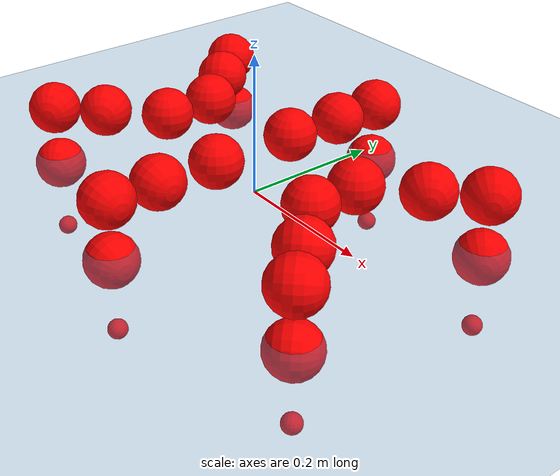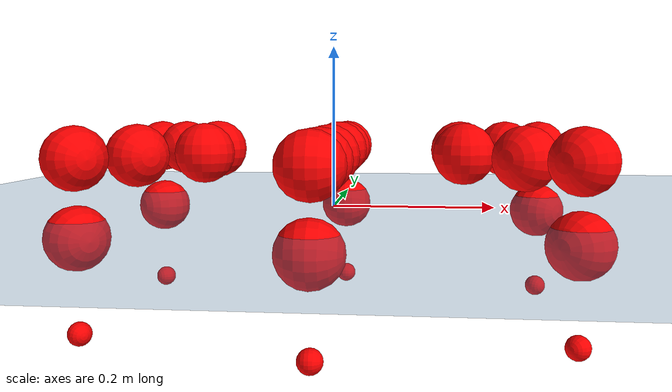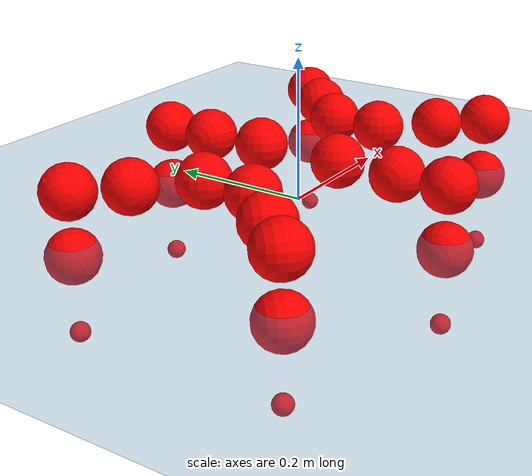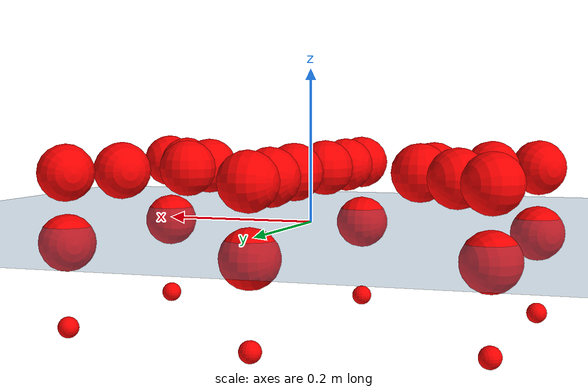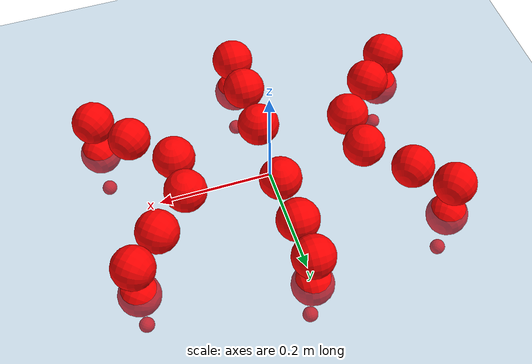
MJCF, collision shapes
<mujoco model="Golem">
  <compiler angle="radian" assetdir="assets" balanceinertia="true" inertiafromgeom="false"/>

  <option timestep="0.005" density="1.2" viscosity="2e-05"/>

  <size nkey="1"/>

  <visual>
    <quality shadowsize="8192"/>
    <map shadowclip="0.5"/>
  </visual>

  <default>
    <default class="/">
      <joint armature="0.01" damping="0.01" frictionloss="0.01"/>
      <geom contype="0" conaffinity="0" group="1" solref="-1000 -80"/>
      <site size="0.01 0.005 0.005" group="5"/>
      <general forcelimited="true" biastype="affine" gainprm="25" biasprm="0 -25 -0.5"/>
      <default class="visual">
        <geom type="mesh" group="2"/>
      </default>
      <default class="collision">
        <geom group="3"/>
      </default>
      <default class="foot">
        <geom size="0.01 0 0" condim="6" group="4" priority="1" solimp="0.015 1 0.01"/>
      </default>
      <default class="reward_collision_sphere">
        <geom group="5" rgba="1 0 0 1"/>
      </default>
    </default>
  </default>

  <asset>
    <texture type="skybox" colorspace="auto" name="//unnamed_texture_0" builtin="gradient" rgb1="0.95 0.95 0.95" rgb2="0.95 0.95 0.95" width="100" height="600"/>
    <texture type="2d" colorspace="auto" name="texplane" builtin="checker" rgb1="0.345 0.575 0.748" rgb2="0.345 0.575 0.748" markrgb="1 1 1" width="512" height="512"/>
    <material name="MatPlane" class="/" texture="texplane" texuniform="true" texrepeat="2 2" specular="0.9"/>
    <mesh name="body" class="/" file="body.stl" scale="0.001 0.001 0.001"/>
    <mesh name="coxa" class="/" file="coxa.stl" scale="0.001 0.001 0.001"/>
    <mesh name="femur" class="/" file="femur.stl" scale="0.001 0.001 0.001"/>
    <mesh name="tibia" class="/" file="tibia.stl" scale="0.001 0.001 0.001"/>
    <mesh name="tarsus" class="/" file="tarsus.stl" scale="0.001 0.001 0.001"/>
  </asset>

  <worldbody>
    <geom name="floor" class="/" size="100 100 0.125" type="plane" group="0" material="MatPlane"/>
    <light name="toplight_shadow" class="/" pos="0 0 5" dir="0.0990148 0.0990148 -0.990148" type="directional" ambient="0.04 0.04 0.04" diffuse="0.55 0.55 0.55" specular="0.12 0.12 0.12"/>
    <light name="toplight_fill" class="/" pos="0 0 5" dir="0.0990148 0.0990148 -0.990148" type="directional" castshadow="false" ambient="0.04 0.04 0.04" diffuse="0.3 0.3 0.3" specular="0.08 0.08 0.08"/>
    <body name="trunk" pos="0.000869163 0.000762039 0.000314425" quat="1 5.68105e-05 -6.25738e-05 4.07548e-05">
      <inertial pos="-0.000549715 -0.000270871 -0.0042271" quat="0.999992 0.000233228 -0.00339116 -0.00210556" mass="2.91594" diaginertia="0.0106157 0.00164302 0.0132801"/>
      <joint name="//unnamed_joint_0" type="free"/>
      <geom name="//unnamed_geom_1" class="/" pos="0 0 0.0679444" quat="1 0 0 0" type="mesh" rgba="0.9 0.9 0.9 1" mesh="body"/>
      <site name="imu" class="/" pos="0.128559 -0.00433617 0.105994" size="0.00923941"/>
      <camera name="track" class="/" pos="0 -1.39369 0" quat="0.707107 0.707107 0 0" mode="trackcom"/>
      <camera name="ego_camera" class="/" pos="0.131735 0 0.106163" quat="-0.5 -0.5 0.5 0.5"/>
      <body name="coxa_RR" pos="-0.17951 -0.0575674 0.0679425" quat="0.382646 -1.52243e-05 0.000122402 -0.923895">
        <inertial pos="5.39823e-06 4.56735e-05 0.000521018" quat="1 9.43986e-05 8.55619e-06 -5.56516e-05" mass="0.158778" diaginertia="0.0108634 0.00164744 0.0134605"/>
        <joint name="coxa_joint_RR" class="/" pos="0 0 0" axis="0.00125632 0.00177288 -0.999998" range="-3.1359 3.13943" armature="0.00925499" damping="0.00943752" frictionloss="0.00938024"/>
        <geom name="//unnamed_geom_2" class="/" type="mesh" rgba="0.2 0.2 0.2 1" mesh="coxa"/>
        <geom name="//unnamed_geom_3" class="reward_collision_sphere" size="0.0369577" pos="-0.0304004 0 0"/>
        <body name="femur_RR" pos="0.0594042 0.00117104 0.000260901" quat="0.499835 -0.500427 0.499938 0.4998">
          <inertial pos="-0.000131335 -9.54902e-05 -0.000708027" quat="0.999998 -0.000250225 0.000222347 0.00179899" mass="0.159243" diaginertia="0.0107544 0.00165852 0.013649"/>
          <joint name="femur_joint_RR" class="/" pos="0 0 0" axis="-0.00169659 -0.000621311 -0.999998" range="-3.14856 3.13954" armature="0.00932578" damping="0.004187" frictionloss="0.00928647"/>
          <geom name="//unnamed_geom_4" class="/" type="mesh" rgba="0.9 0.9 0.9 1" mesh="femur"/>
          <geom name="//unnamed_geom_5" class="reward_collision_sphere" size="0.0369577"/>
          <body name="tibia_RR" pos="0.000548649 -0.0752553 0.000492972" quat="1.34518e-05 1 -4.08508e-05 -5.07809e-05">
            <inertial pos="0.000161276 0.000248692 0.000521154" quat="0.999993 -0.000528135 -0.000186953 0.00369443" mass="0.15922" diaginertia="0.0107505 0.00164283 0.0136082"/>
            <joint name="tibia_joint_RR" class="/" pos="0 0 0" axis="0.00222472 0.00180086 0.999996" range="-3.12329 3.13927" armature="0.00940717" damping="0.000375112" frictionloss="0.00960864"/>
            <geom name="//unnamed_geom_6" class="/" type="mesh" rgba="0.2 0.2 0.2 1" mesh="tibia"/>
            <geom name="//unnamed_geom_7" class="reward_collision_sphere" size="0.0369577"/>
            <body name="tarsus_RR" pos="0.089037 -0.000329086 -0.00133494" quat="1 -5.69361e-05 -0.000147315 8.75407e-05">
              <inertial pos="0.0615438 0.000701651 0.000155534" quat="0.500761 0.499491 0.498777 0.500967" mass="0.16097" diaginertia="0.0107694 0.0016633 0.0135593"/>
              <joint name="tarsus_joint_RR" class="/" pos="0 0 0" axis="0.00388419 -0.00168726 0.999991" stiffness="0.00113691" range="-3.13328 3.15471" armature="0.00927445" damping="0.0416225" frictionloss="0.0094533"/>
              <geom name="//unnamed_geom_8" class="/" type="mesh" rgba="0.9 0.9 0.9 1" mesh="tarsus"/>
              <geom name="foot_1" class="foot" size="0.00904182" pos="0.113495 0 0" quat="0 -0.707107 0 0.707107"/>
              <geom name="//unnamed_geom_10" class="reward_collision_sphere" size="0.0369577"/>
              <geom name="//unnamed_geom_11" class="reward_collision_sphere" size="0.0138591" pos="0.108935 0 0"/>
              <site name="foot_1" class="foot" pos="0.113495 0 0" quat="0 -0.707107 0 0.707107" size="0.00923941"/>
            </body>
          </body>
        </body>
      </body>
      <body name="coxa_RM" pos="-0.000279536 -0.0933801 0.0674709" quat="0.707133 -3.69677e-06 4.02201e-05 -0.707081">
        <inertial pos="0.000947375 0.00035509 0.000531549" quat="0.999991 -0.0023965 -0.00198111 0.0028346" mass="0.157567" diaginertia="0.0107159 0.00164574 0.0135538"/>
        <joint name="coxa_joint_RM" class="/" pos="0 0 0" axis="0.000170333 0.000204902 -1" range="-3.14589 3.14163" armature="0.0092622" damping="0.0098262" frictionloss="0.00932619"/>
        <geom name="//unnamed_geom_12" class="/" type="mesh" rgba="0.2 0.2 0.2 1" mesh="coxa"/>
        <geom name="//unnamed_geom_13" class="reward_collision_sphere" size="0.0369577" pos="-0.0304004 0 0"/>
        <body name="femur_RM" pos="0.0585159 -0.000553363 -0.000523857" quat="0.499882 -0.499785 0.499888 0.500445">
          <inertial pos="-0.000107602 -0.000366755 9.73677e-05" quat="0.999999 -0.000879081 -0.000331443 0.000409808" mass="0.156762" diaginertia="0.0107478 0.00165747 0.0134575"/>
          <joint name="femur_joint_RM" class="/" pos="0 0 0" axis="0.00290819 0.00234124 -0.999993" range="-3.13647 3.14186" armature="0.00930068" damping="0.0128976" frictionloss="0.00936349"/>
          <geom name="//unnamed_geom_14" class="/" type="mesh" rgba="0.9 0.9 0.9 1" mesh="femur"/>
          <geom name="//unnamed_geom_15" class="reward_collision_sphere" size="0.0369577"/>
          <body name="tibia_RM" pos="-0.000129422 -0.0734323 -0.000185823" quat="8.16512e-05 1 1.16507e-05 -5.62499e-06">
            <inertial pos="-0.000162901 0.000253558 0.000701339" quat="1 -0.000280368 9.23914e-05 0.000585758" mass="0.157266" diaginertia="0.0106486 0.00167121 0.0135435"/>
            <joint name="tibia_joint_RM" class="/" pos="0 0 0" axis="0.00199807 -0.00566183 0.999982" range="-3.14015 3.1385" armature="0.00912449" damping="0.0118185" frictionloss="0.00920042"/>
            <geom name="//unnamed_geom_16" class="/" type="mesh" rgba="0.2 0.2 0.2 1" mesh="tibia"/>
            <geom name="//unnamed_geom_17" class="reward_collision_sphere" size="0.0369577"/>
            <body name="tarsus_RM" pos="0.0881208 0.000268121 0.000847645" quat="1 2.84653e-05 7.69377e-05 -5.08359e-05">
              <inertial pos="0.060637 0.000245412 0.000485062" quat="0.499944 0.498892 0.501693 0.499467" mass="0.157827" diaginertia="0.0107862 0.00165185 0.0134011"/>
              <joint name="tarsus_joint_RM" class="/" pos="0 0 0" axis="-0.00282998 0.0033656 0.99999" range="-3.14485 3.13748" armature="0.00923759" damping="0.00755692" frictionloss="0.00910825"/>
              <geom name="//unnamed_geom_18" class="/" type="mesh" rgba="0.9 0.9 0.9 1" mesh="tarsus"/>
              <geom name="foot_2" class="foot" size="0.00931982" pos="0.113495 0 0" quat="0 -0.707107 0 0.707107"/>
              <geom name="//unnamed_geom_20" class="reward_collision_sphere" size="0.0369577"/>
              <geom name="//unnamed_geom_21" class="reward_collision_sphere" size="0.0138591" pos="0.108935 0 0"/>
              <site name="foot_2" class="foot" pos="0.113495 0 0" quat="0 -0.707107 0 0.707107" size="0.00923941"/>
            </body>
          </body>
        </body>
      </body>
      <body name="coxa_RF" pos="0.180804 -0.0585752 0.0684685" quat="0.923894 0.000192391 9.81141e-05 -0.382648">
        <inertial pos="-0.000223283 0.000361632 -0.000182143" quat="0.999996 0.0017967 -0.00232797 0.000480213" mass="0.159497" diaginertia="0.0105813 0.00164545 0.0134805"/>
        <joint name="coxa_joint_RF" class="/" pos="0 0 0" axis="0.00194132 0.00123108 -0.999997" range="-3.13581 3.14002" armature="0.00888639" damping="0.00795918" frictionloss="0.00909989"/>
        <geom name="//unnamed_geom_22" class="/" type="mesh" rgba="0.2 0.2 0.2 1" mesh="coxa"/>
        <geom name="//unnamed_geom_23" class="reward_collision_sphere" size="0.0369577" pos="-0.0304004 0 0"/>
        <body name="femur_RF" pos="0.0598068 -9.94055e-05 -0.0011298" quat="0.5 -0.499952 0.500038 0.500011">
          <inertial pos="-0.000448072 -0.000118413 -0.000556853" quat="0.999999 0.000437587 0.00108085 -0.000983244" mass="0.159436" diaginertia="0.010568 0.00165556 0.0135155"/>
          <joint name="femur_joint_RF" class="/" pos="0 0 0" axis="-0.00364923 -0.00258789 -0.99999" range="-3.13398 3.15541" armature="0.00918113" damping="0.0104019" frictionloss="0.00901415"/>
          <geom name="//unnamed_geom_24" class="/" type="mesh" rgba="0.9 0.9 0.9 1" mesh="femur"/>
          <geom name="//unnamed_geom_25" class="reward_collision_sphere" size="0.0369577"/>
          <body name="tibia_RF" pos="-0.000725986 -0.0755315 -0.00125738" quat="2.36164e-06 1 -4.46318e-05 0.000133249">
            <inertial pos="0.000232889 0.000773247 1.8112e-06" quat="0.999994 7.75057e-05 -0.00350911 -0.00056437" mass="0.15592" diaginertia="0.0106888 0.00163594 0.0135106"/>
            <joint name="tibia_joint_RF" class="/" pos="0 0 0" axis="-0.000787878 0.00339631 0.999994" range="-3.14118 3.15529" armature="0.00935775" damping="0" frictionloss="0.00916031"/>
            <geom name="//unnamed_geom_26" class="/" type="mesh" rgba="0.2 0.2 0.2 1" mesh="tibia"/>
            <geom name="//unnamed_geom_27" class="reward_collision_sphere" size="0.0369577"/>
            <body name="tarsus_RF" pos="0.0882627 -0.000682587 0.000964888" quat="1 -0.000291273 0.000169984 -0.000123855">
              <inertial pos="0.0606774 6.7287e-05 0.00011491" quat="0.501171 0.498688 0.499058 0.501077" mass="0.158132" diaginertia="0.0106534 0.001651 0.0136018"/>
              <joint name="tarsus_joint_RF" class="/" pos="0 0 0" axis="-0.00174457 0.00317984 0.999993" range="-3.12767 3.13965" armature="0.0088675" damping="0.0026805" frictionloss="0.00949619"/>
              <geom name="//unnamed_geom_28" class="/" type="mesh" rgba="0.9 0.9 0.9 1" mesh="tarsus"/>
              <geom name="foot_3" class="foot" size="0.00918118" pos="0.113495 0 0" quat="0 -0.707107 0 0.707107"/>
              <geom name="//unnamed_geom_30" class="reward_collision_sphere" size="0.0369577"/>
              <geom name="//unnamed_geom_31" class="reward_collision_sphere" size="0.0138591" pos="0.108935 0 0"/>
              <site name="foot_3" class="foot" pos="0.113495 0 0" quat="0 -0.707107 0 0.707107" size="0.00923941"/>
            </body>
          </body>
        </body>
      </body>
      <body name="coxa_LR" pos="-0.180722 0.0605833 0.0694408" quat="0.382726 0.000173268 5.60015e-05 0.923862">
        <inertial pos="0.00012384 0.000294271 0.000352577" quat="0.999992 -0.00159693 0.00310273 0.00191629" mass="0.15733" diaginertia="0.0105658 0.00162311 0.0134025"/>
        <joint name="coxa_joint_LR" class="/" pos="0 0 0" axis="0.000247833 0.000294604 -1" range="-3.14768 3.14693" armature="0.00886403" damping="0.0103597" frictionloss="0.00905357"/>
        <geom name="//unnamed_geom_32" class="/" type="mesh" rgba="0.2 0.2 0.2 1" mesh="coxa"/>
        <geom name="//unnamed_geom_33" class="reward_collision_sphere" size="0.0369577" pos="-0.0304004 0 0"/>
        <body name="femur_LR" pos="0.0614931 -0.00252017 -0.00150785" quat="0.500029 -0.499975 0.500048 0.499948">
          <inertial pos="-0.000128721 0.000188683 0.000163621" quat="0.999994 -0.00202838 0.00288042 0.000295143" mass="0.159119" diaginertia="0.0107857 0.00166872 0.0135455"/>
          <joint name="femur_joint_LR" class="/" pos="0 0 0" axis="-7.42098e-06 -9.85228e-06 1" range="-3.14458 3.1547" armature="0.00885578" damping="0.00303535" frictionloss="0.00904602"/>
          <geom name="//unnamed_geom_34" class="/" type="mesh" rgba="0.9 0.9 0.9 1" mesh="femur"/>
          <geom name="//unnamed_geom_35" class="reward_collision_sphere" size="0.0369577"/>
          <body name="tibia_LR" pos="0.00106816 -0.0764301 -0.00114038" quat="-8.01851e-05 1 -0.000307031 -0.000216776">
            <inertial pos="-0.00112618 0.000351985 0.000126089" quat="0.999993 -0.00294501 0.00193686 0.00114854" mass="0.160028" diaginertia="0.0107909 0.00163484 0.0134554"/>
            <joint name="tibia_joint_LR" class="/" pos="0 0 0" axis="-0.000167301 0.000303952 -1" range="-3.13998 3.14062" armature="0.00938897" damping="0.00466696" frictionloss="0.00892139"/>
            <geom name="//unnamed_geom_36" class="/" type="mesh" rgba="0.2 0.2 0.2 1" mesh="tibia"/>
            <geom name="//unnamed_geom_37" class="reward_collision_sphere" size="0.0369577"/>
            <body name="tarsus_LR" pos="0.0890342 0.000463918 0.00191326" quat="1 0.000133556 3.52777e-05 -8.38828e-05">
              <inertial pos="0.0618868 0.00124459 -0.000139801" quat="0.501217 0.498937 0.499722 0.500122" mass="0.156653" diaginertia="0.0105724 0.00162625 0.0133577"/>
              <joint name="tarsus_joint_LR" class="/" pos="0 0 0" axis="-0.000647603 0.000133864 -1" stiffness="0.00509612" range="-3.14338 3.13261" armature="0.00904521" damping="0.0277117" frictionloss="0.00913543"/>
              <geom name="//unnamed_geom_38" class="/" type="mesh" rgba="0.9 0.9 0.9 1" mesh="tarsus"/>
              <geom name="foot_4" class="foot" size="0.00933333" pos="0.113495 0 0" quat="0.707107 0 -0.707107 0"/>
              <geom name="//unnamed_geom_40" class="reward_collision_sphere" size="0.0369577"/>
              <geom name="//unnamed_geom_41" class="reward_collision_sphere" size="0.0138591" pos="0.108935 0 0"/>
              <site name="foot_4" class="foot" pos="0.113495 0 0" quat="0.707107 0 -0.707107 0" size="0.00923941"/>
            </body>
          </body>
        </body>
      </body>
      <body name="coxa_LM" pos="-0.000384571 0.0909158 0.0685163" quat="0.707086 5.50687e-05 0.000179223 0.707128">
        <inertial pos="-0.000217435 0.000189669 0.00176537" quat="0.999995 0.000821064 -0.0029726 -0.000857448" mass="0.156493" diaginertia="0.0107052 0.00163202 0.0133554"/>
        <joint name="coxa_joint_LM" class="/" pos="0 0 0" axis="0.000256882 0.000756551 -1" range="-3.14287 3.13886" armature="0.00953199" damping="0" frictionloss="0.0093981"/>
        <geom name="//unnamed_geom_42" class="/" type="mesh" rgba="0.2 0.2 0.2 1" mesh="coxa"/>
        <geom name="//unnamed_geom_43" class="reward_collision_sphere" size="0.0369577" pos="-0.0304004 0 0"/>
        <body name="femur_LM" pos="0.0564799 0.0011864 -0.00126302" quat="0.500278 -0.499685 0.499738 0.500299">
          <inertial pos="0.000493883 0.000135636 0.000250958" quat="0.999993 -0.00242785 0.00120402 0.00263219" mass="0.155317" diaginertia="0.0105103 0.00162183 0.013336"/>
          <joint name="femur_joint_LM" class="/" pos="0 0 0" axis="0.00131544 0.000281016 0.999999" range="-3.15658 3.14854" armature="0.00882005" damping="0.00191823" frictionloss="0.00924839"/>
          <geom name="//unnamed_geom_44" class="/" type="mesh" rgba="0.9 0.9 0.9 1" mesh="femur"/>
          <geom name="//unnamed_geom_45" class="reward_collision_sphere" size="0.0369577"/>
          <body name="tibia_LM" pos="0.000396243 -0.0731932 0.0011319" quat="4.64419e-05 1 -1.96373e-05 -0.000160184">
            <inertial pos="-9.46494e-06 -0.00153085 0.000634366" quat="1 -1.58982e-06 4.02577e-06 2.00125e-06" mass="0.158064" diaginertia="0.0107493 0.00165384 0.0133691"/>
            <joint name="tibia_joint_LM" class="/" pos="0 0 0" axis="0.0041824 -0.00194638 -0.999989" range="-3.13062 3.13757" armature="0.00885359" damping="0" frictionloss="0.00961581"/>
            <geom name="//unnamed_geom_46" class="/" type="mesh" rgba="0.2 0.2 0.2 1" mesh="tibia"/>
            <geom name="//unnamed_geom_47" class="reward_collision_sphere" size="0.0369577"/>
            <body name="tarsus_LM" pos="0.0895822 0.000264734 -0.0017169" quat="1 1.02454e-05 -0.000399218 -2.21639e-05">
              <inertial pos="0.0616006 0.000318326 -0.000962115" quat="0.500782 0.499175 0.500279 0.499762" mass="0.158426" diaginertia="0.0107284 0.00166698 0.0135551"/>
              <joint name="tarsus_joint_LM" class="/" pos="0 0 0" axis="-0.00520553 0.00222661 -0.999984" range="-3.15645 3.13657" armature="0.00928256" damping="0" frictionloss="0.00926346"/>
              <geom name="//unnamed_geom_48" class="/" type="mesh" rgba="0.9 0.9 0.9 1" mesh="tarsus"/>
              <geom name="foot_5" class="foot" size="0.0092878" pos="0.113495 0 0" quat="0.707107 0 -0.707107 0"/>
              <geom name="//unnamed_geom_50" class="reward_collision_sphere" size="0.0369577"/>
              <geom name="//unnamed_geom_51" class="reward_collision_sphere" size="0.0138591" pos="0.108935 0 0"/>
              <site name="foot_5" class="foot" pos="0.113495 0 0" quat="0.707107 0 -0.707107 0" size="0.00923941"/>
            </body>
          </body>
        </body>
      </body>
      <body name="coxa_LF" pos="0.179779 0.058067 0.0691505" quat="0.923879 1.60551e-05 -7.71377e-06 0.382685">
        <inertial pos="0.000251336 0.000403372 -0.000122448" quat="1 0.000192791 -0.000441036 -0.000289461" mass="0.160045" diaginertia="0.0108509 0.00163551 0.0135835"/>
        <joint name="coxa_joint_LF" class="/" pos="0 0 0" axis="-0.000172364 -0.000240068 -1" range="-3.13922 3.13263" armature="0.00961772" damping="0.00818014" frictionloss="0.00943875"/>
        <geom name="//unnamed_geom_52" class="/" type="mesh" rgba="0.2 0.2 0.2 1" mesh="coxa"/>
        <geom name="//unnamed_geom_53" class="reward_collision_sphere" size="0.0369577" pos="-0.0304004 0 0"/>
        <body name="femur_LF" pos="0.0593156 -0.000448759 -0.000895089" quat="0.500051 -0.500147 0.499766 0.500037">
          <inertial pos="-0.0009458 -0.000543679 0.000549373" quat="0.999998 -0.000927977 0.000617281 0.00174054" mass="0.157317" diaginertia="0.0107999 0.00165857 0.0135403"/>
          <joint name="femur_joint_LF" class="/" pos="0 0 0" axis="-0.00116287 0.00657352 0.999978" range="-3.14264 3.13436" armature="0.00926094" damping="0.00397137" frictionloss="0.00946401"/>
          <geom name="//unnamed_geom_54" class="/" type="mesh" rgba="0.9 0.9 0.9 1" mesh="femur"/>
          <geom name="//unnamed_geom_55" class="reward_collision_sphere" size="0.0369577"/>
          <body name="tibia_LF" pos="0.000932408 -0.0746022 0.000578215" quat="1.15291e-05 1 5.1704e-05 -0.000282705">
            <inertial pos="0.000505066 0.000151654 8.8377e-05" quat="1 4.29547e-05 0.00016165 -0.000615724" mass="0.157408" diaginertia="0.0107657 0.00164263 0.0134255"/>
            <joint name="tibia_joint_LF" class="/" pos="0 0 0" axis="-0.000411296 0.000116426 -1" stiffness="0.00064453" range="-3.12777 3.1329" armature="0.0087917" damping="0" frictionloss="0.00916325"/>
            <geom name="//unnamed_geom_56" class="/" type="mesh" rgba="0.2 0.2 0.2 1" mesh="tibia"/>
            <geom name="//unnamed_geom_57" class="reward_collision_sphere" size="0.0369577"/>
            <body name="tarsus_LF" pos="0.0894345 -0.000947379 0.000121485" quat="1 -8.21152e-05 -0.000189526 0.000374086">
              <inertial pos="0.0630887 0.000431922 4.70373e-05" quat="0.498923 0.500204 0.49989 0.500981" mass="0.158391" diaginertia="0.0106607 0.0016328 0.0134827"/>
              <joint name="tarsus_joint_LF" class="/" pos="0 0 0" axis="0.00313755 0.00386624 -0.999988" stiffness="0.0263395" range="-3.13215 3.14856" armature="0.00935566" damping="0.0261702" frictionloss="0.00899891"/>
              <geom name="//unnamed_geom_58" class="/" type="mesh" rgba="0.9 0.9 0.9 1" mesh="tarsus"/>
              <geom name="foot_6" class="foot" size="0.00931314" pos="0.113495 0 0" quat="0.707107 0 -0.707107 0"/>
              <geom name="//unnamed_geom_60" class="reward_collision_sphere" size="0.0369577"/>
              <geom name="//unnamed_geom_61" class="reward_collision_sphere" size="0.0138591" pos="0.108935 0 0"/>
              <site name="foot_6" class="foot" pos="0.113495 0 0" quat="0.707107 0 -0.707107 0" size="0.00923941"/>
            </body>
          </body>
        </body>
      </body>
    </body>
  </worldbody>

  <contact>
    <pair class="/" geom1="floor" geom2="foot_1" name="//unnamed_contact_0"/>
    <pair class="/" geom1="floor" geom2="foot_2" name="//unnamed_contact_1"/>
    <pair class="/" geom1="floor" geom2="foot_3" name="//unnamed_contact_2"/>
    <pair class="/" geom1="floor" geom2="foot_4" name="//unnamed_contact_3"/>
    <pair class="/" geom1="floor" geom2="foot_5" name="//unnamed_contact_4"/>
    <pair class="/" geom1="floor" geom2="foot_6" name="//unnamed_contact_5"/>
  </contact>

  <actuator>
    <general name="coxa_joint_RR" class="/" joint="coxa_joint_RR" forcerange="-6.7247 6.7247" gainprm="22.2652" biasprm="0 -22.2652 -0.494265"/>
    <general name="femur_joint_RR" class="/" joint="femur_joint_RR" forcerange="-6.65389 6.65389" gainprm="22.2652" biasprm="0 -22.2652 -0.494265"/>
    <general name="tibia_joint_RR" class="/" joint="tibia_joint_RR" forcerange="-6.62116 6.62116" gainprm="22.2652" biasprm="0 -22.2652 -0.494265"/>
    <general name="tarsus_joint_RR" class="/" joint="tarsus_joint_RR" forcerange="-6.57956 6.57956" gainprm="22.2652" biasprm="0 -22.2652 -0.494265"/>
    <general name="coxa_joint_RM" class="/" joint="coxa_joint_RM" forcerange="-6.75698 6.75698" gainprm="22.2652" biasprm="0 -22.2652 -0.494265"/>
    <general name="femur_joint_RM" class="/" joint="femur_joint_RM" forcerange="-6.7591 6.7591" gainprm="22.2652" biasprm="0 -22.2652 -0.494265"/>
    <general name="tibia_joint_RM" class="/" joint="tibia_joint_RM" forcerange="-6.81655 6.81655" gainprm="22.2652" biasprm="0 -22.2652 -0.494265"/>
    <general name="tarsus_joint_RM" class="/" joint="tarsus_joint_RM" forcerange="-6.83563 6.83563" gainprm="22.2652" biasprm="0 -22.2652 -0.494265"/>
    <general name="coxa_joint_RF" class="/" joint="coxa_joint_RF" forcerange="-6.85697 6.85697" gainprm="22.2652" biasprm="0 -22.2652 -0.494265"/>
    <general name="femur_joint_RF" class="/" joint="femur_joint_RF" forcerange="-6.72334 6.72334" gainprm="22.2652" biasprm="0 -22.2652 -0.494265"/>
    <general name="tibia_joint_RF" class="/" joint="tibia_joint_RF" forcerange="-6.74271 6.74271" gainprm="22.2652" biasprm="0 -22.2652 -0.494265"/>
    <general name="tarsus_joint_RF" class="/" joint="tarsus_joint_RF" forcerange="-6.67395 6.67395" gainprm="22.2652" biasprm="0 -22.2652 -0.494265"/>
    <general name="coxa_joint_LR" class="/" joint="coxa_joint_LR" forcerange="-6.72673 6.72673" gainprm="22.2652" biasprm="0 -22.2652 -0.494265"/>
    <general name="femur_joint_LR" class="/" joint="femur_joint_LR" forcerange="-6.91439 6.91439" gainprm="22.2652" biasprm="0 -22.2652 -0.494265"/>
    <general name="tibia_joint_LR" class="/" joint="tibia_joint_LR" forcerange="-6.80768 6.80768" gainprm="22.2652" biasprm="0 -22.2652 -0.494265"/>
    <general name="tarsus_joint_LR" class="/" joint="tarsus_joint_LR" forcerange="-6.96862 6.96862" gainprm="22.2652" biasprm="0 -22.2652 -0.494265"/>
    <general name="coxa_joint_LM" class="/" joint="coxa_joint_LM" forcerange="-6.80444 6.80444" gainprm="22.2652" biasprm="0 -22.2652 -0.494265"/>
    <general name="femur_joint_LM" class="/" joint="femur_joint_LM" forcerange="-6.63014 6.63014" gainprm="22.2652" biasprm="0 -22.2652 -0.494265"/>
    <general name="tibia_joint_LM" class="/" joint="tibia_joint_LM" forcerange="-6.9637 6.9637" gainprm="22.2652" biasprm="0 -22.2652 -0.494265"/>
    <general name="tarsus_joint_LM" class="/" joint="tarsus_joint_LM" forcerange="-6.64137 6.64137" gainprm="22.2652" biasprm="0 -22.2652 -0.494265"/>
    <general name="coxa_joint_LF" class="/" joint="coxa_joint_LF" forcerange="-6.7064 6.7064" gainprm="22.2652" biasprm="0 -22.2652 -0.494265"/>
    <general name="femur_joint_LF" class="/" joint="femur_joint_LF" forcerange="-6.8691 6.8691" gainprm="22.2652" biasprm="0 -22.2652 -0.494265"/>
    <general name="tibia_joint_LF" class="/" joint="tibia_joint_LF" forcerange="-6.52221 6.52221" gainprm="22.2652" biasprm="0 -22.2652 -0.494265"/>
    <general name="tarsus_joint_LF" class="/" joint="tarsus_joint_LF" forcerange="-6.78751 6.78751" gainprm="22.2652" biasprm="0 -22.2652 -0.494265"/>
  </actuator>

  <sensor>
    <gyro site="imu" name="imu_angular_velocity"/>
    <velocimeter site="imu" name="imu_linear_velocity"/>
    <framelinvel objtype="site" objname="foot_1" name="foot_1_global_linear_velocity"/>
    <framelinvel objtype="site" objname="foot_2" name="foot_2_global_linear_velocity"/>
    <framelinvel objtype="site" objname="foot_3" name="foot_3_global_linear_velocity"/>
    <framelinvel objtype="site" objname="foot_4" name="foot_4_global_linear_velocity"/>
    <framelinvel objtype="site" objname="foot_5" name="foot_5_global_linear_velocity"/>
    <framelinvel objtype="site" objname="foot_6" name="foot_6_global_linear_velocity"/>
  </sensor>

  <keyframe>
    <key name="home" qpos="0 0 0.1457 1 0 0 0 0 0 0 0 0 0 0 0 0 0 0 0 0 0 0 0 0 0 0 0 0 0 0 0"/>
  </keyframe>
</mujoco>
